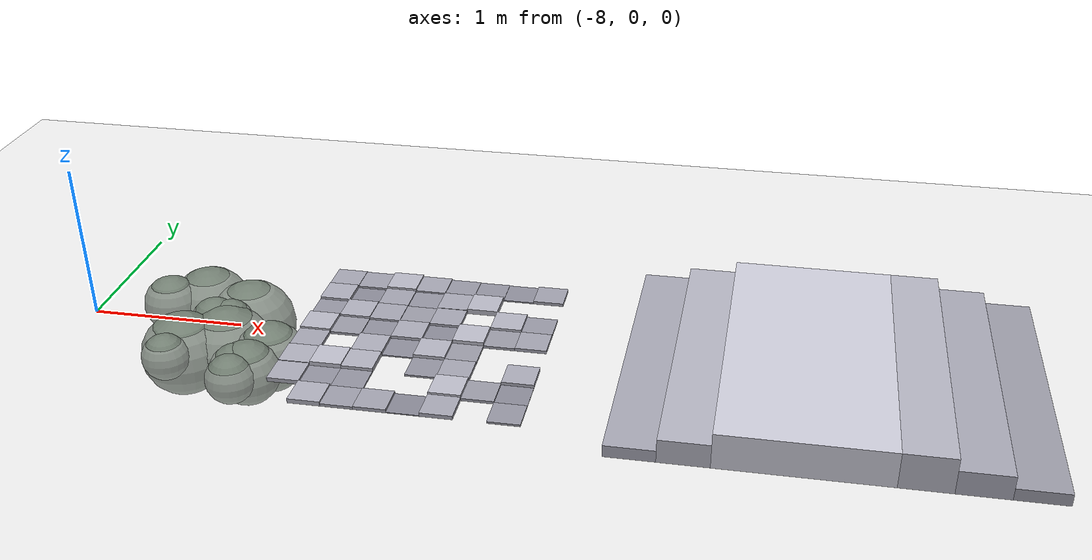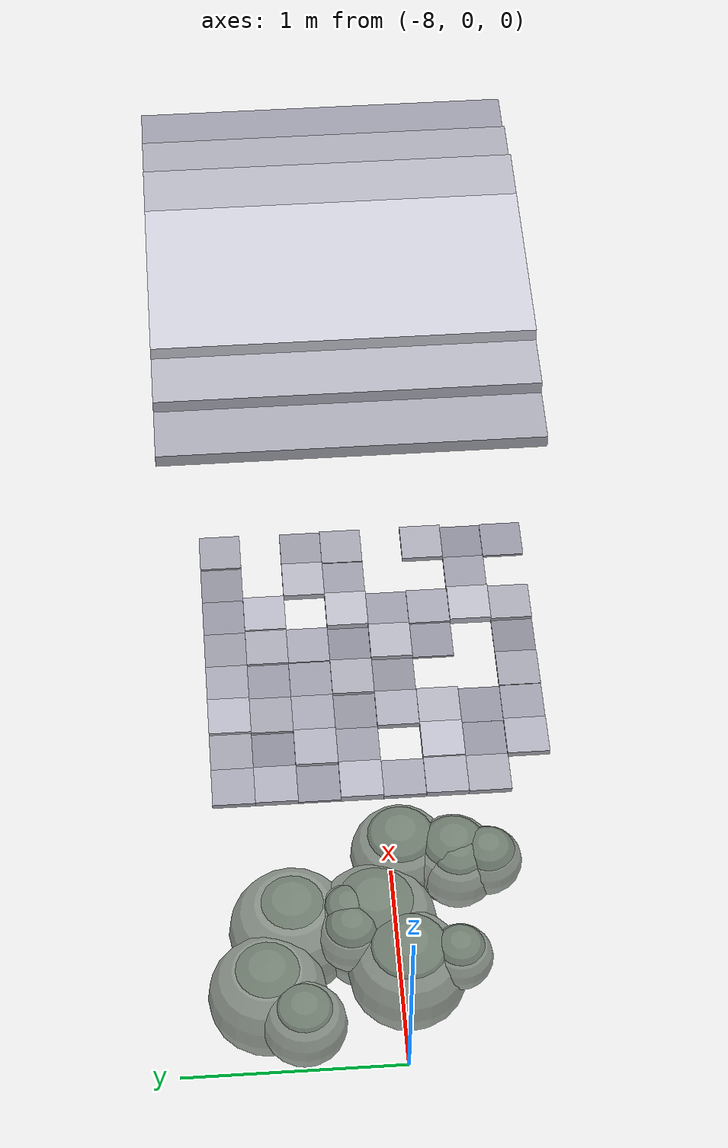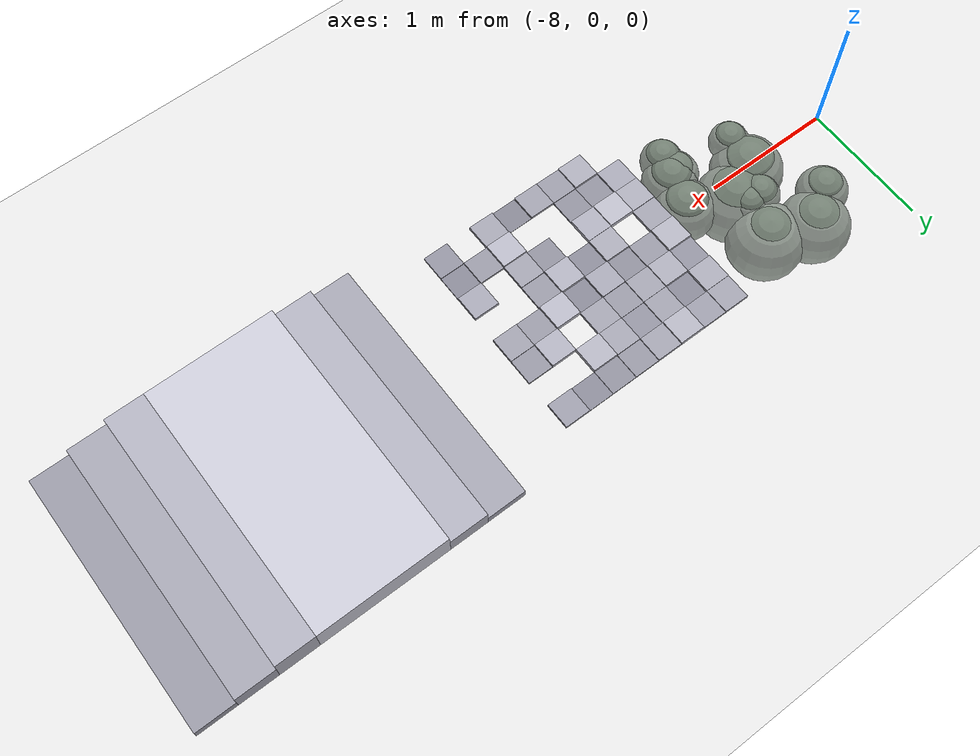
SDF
<?xml version="1.0" ?>
<!-- Generated by scripts/make_course.py (step 7.5 cm, seed 7). The robot walks towards -x. -->
<sdf version="1.5">
  <world name="default">
    <include><uri>model://sun</uri></include>
    <include><uri>model://ground_plane</uri></include>
    <model name="up_1">
      <static>true</static>
      <pose>-2.150 0.000 0.0375 0 0 0</pose>
      <link name="link">
        <collision name="collision"><geometry><box><size>0.300 2.000 0.0750</size></box></geometry></collision>
        <visual name="visual"><geometry><box><size>0.300 2.000 0.0750</size></box></geometry>
          <material><ambient>0.60 0.60 0.65 1</ambient><diffuse>0.60 0.60 0.65 1</diffuse></material></visual>
      </link>
    </model>
    <model name="up_2">
      <static>true</static>
      <pose>-2.450 0.000 0.0750 0 0 0</pose>
      <link name="link">
        <collision name="collision"><geometry><box><size>0.300 2.000 0.1500</size></box></geometry></collision>
        <visual name="visual"><geometry><box><size>0.300 2.000 0.1500</size></box></geometry>
          <material><ambient>0.65 0.65 0.70 1</ambient><diffuse>0.65 0.65 0.70 1</diffuse></material></visual>
      </link>
    </model>
    <model name="up_3">
      <static>true</static>
      <pose>-2.750 0.000 0.1125 0 0 0</pose>
      <link name="link">
        <collision name="collision"><geometry><box><size>0.300 2.000 0.2250</size></box></geometry></collision>
        <visual name="visual"><geometry><box><size>0.300 2.000 0.2250</size></box></geometry>
          <material><ambient>0.70 0.70 0.75 1</ambient><diffuse>0.70 0.70 0.75 1</diffuse></material></visual>
      </link>
    </model>
    <model name="landing">
      <static>true</static>
      <pose>-3.400 0.000 0.1125 0 0 0</pose>
      <link name="link">
        <collision name="collision"><geometry><box><size>1.000 2.000 0.2250</size></box></geometry></collision>
        <visual name="visual"><geometry><box><size>1.000 2.000 0.2250</size></box></geometry>
          <material><ambient>0.80 0.80 0.85 1</ambient><diffuse>0.80 0.80 0.85 1</diffuse></material></visual>
      </link>
    </model>
    <model name="down_1">
      <static>true</static>
      <pose>-4.050 0.000 0.0750 0 0 0</pose>
      <link name="link">
        <collision name="collision"><geometry><box><size>0.300 2.000 0.1500</size></box></geometry></collision>
        <visual name="visual"><geometry><box><size>0.300 2.000 0.1500</size></box></geometry>
          <material><ambient>0.70 0.70 0.75 1</ambient><diffuse>0.70 0.70 0.75 1</diffuse></material></visual>
      </link>
    </model>
    <model name="down_2">
      <static>true</static>
      <pose>-4.350 0.000 0.0375 0 0 0</pose>
      <link name="link">
        <collision name="collision"><geometry><box><size>0.300 2.000 0.0750</size></box></geometry></collision>
        <visual name="visual"><geometry><box><size>0.300 2.000 0.0750</size></box></geometry>
          <material><ambient>0.65 0.65 0.70 1</ambient><diffuse>0.65 0.65 0.70 1</diffuse></material></visual>
      </link>
    </model>
    <model name="tile_0_0">
      <static>true</static>
      <pose>-5.100 -0.700 0.0065 0 0 0</pose>
      <link name="link">
        <collision name="collision"><geometry><box><size>0.200 0.200 0.0130</size></box></geometry></collision>
        <visual name="visual"><geometry><box><size>0.200 0.200 0.0130</size></box></geometry>
          <material><ambient>0.58 0.58 0.63 1</ambient><diffuse>0.58 0.58 0.63 1</diffuse></material></visual>
      </link>
    </model>
    <model name="tile_0_1">
      <static>true</static>
      <pose>-5.100 -0.500 0.0030 0 0 0</pose>
      <link name="link">
        <collision name="collision"><geometry><box><size>0.200 0.200 0.0060</size></box></geometry></collision>
        <visual name="visual"><geometry><box><size>0.200 0.200 0.0060</size></box></geometry>
          <material><ambient>0.54 0.54 0.59 1</ambient><diffuse>0.54 0.54 0.59 1</diffuse></material></visual>
      </link>
    </model>
    <model name="tile_0_2">
      <static>true</static>
      <pose>-5.100 -0.300 0.0130 0 0 0</pose>
      <link name="link">
        <collision name="collision"><geometry><box><size>0.200 0.200 0.0260</size></box></geometry></collision>
        <visual name="visual"><geometry><box><size>0.200 0.200 0.0260</size></box></geometry>
          <material><ambient>0.66 0.66 0.71 1</ambient><diffuse>0.66 0.66 0.71 1</diffuse></material></visual>
      </link>
    </model>
    <model name="tile_0_4">
      <static>true</static>
      <pose>-5.100 0.100 0.0107 0 0 0</pose>
      <link name="link">
        <collision name="collision"><geometry><box><size>0.200 0.200 0.0214</size></box></geometry></collision>
        <visual name="visual"><geometry><box><size>0.200 0.200 0.0214</size></box></geometry>
          <material><ambient>0.63 0.63 0.68 1</ambient><diffuse>0.63 0.63 0.68 1</diffuse></material></visual>
      </link>
    </model>
    <model name="tile_0_5">
      <static>true</static>
      <pose>-5.100 0.300 0.0073 0 0 0</pose>
      <link name="link">
        <collision name="collision"><geometry><box><size>0.200 0.200 0.0146</size></box></geometry></collision>
        <visual name="visual"><geometry><box><size>0.200 0.200 0.0146</size></box></geometry>
          <material><ambient>0.59 0.59 0.64 1</ambient><diffuse>0.59 0.59 0.64 1</diffuse></material></visual>
      </link>
    </model>
    <model name="tile_0_7">
      <static>true</static>
      <pose>-5.100 0.700 0.0101 0 0 0</pose>
      <link name="link">
        <collision name="collision"><geometry><box><size>0.200 0.200 0.0203</size></box></geometry></collision>
        <visual name="visual"><geometry><box><size>0.200 0.200 0.0203</size></box></geometry>
          <material><ambient>0.62 0.62 0.67 1</ambient><diffuse>0.62 0.62 0.67 1</diffuse></material></visual>
      </link>
    </model>
    <model name="tile_1_1">
      <static>true</static>
      <pose>-5.300 -0.500 0.0087 0 0 0</pose>
      <link name="link">
        <collision name="collision"><geometry><box><size>0.200 0.200 0.0173</size></box></geometry></collision>
        <visual name="visual"><geometry><box><size>0.200 0.200 0.0173</size></box></geometry>
          <material><ambient>0.60 0.60 0.65 1</ambient><diffuse>0.60 0.60 0.65 1</diffuse></material></visual>
      </link>
    </model>
    <model name="tile_1_4">
      <static>true</static>
      <pose>-5.300 0.100 0.0085 0 0 0</pose>
      <link name="link">
        <collision name="collision"><geometry><box><size>0.200 0.200 0.0170</size></box></geometry></collision>
        <visual name="visual"><geometry><box><size>0.200 0.200 0.0170</size></box></geometry>
          <material><ambient>0.60 0.60 0.65 1</ambient><diffuse>0.60 0.60 0.65 1</diffuse></material></visual>
      </link>
    </model>
    <model name="tile_1_5">
      <static>true</static>
      <pose>-5.300 0.300 0.0165 0 0 0</pose>
      <link name="link">
        <collision name="collision"><geometry><box><size>0.200 0.200 0.0331</size></box></geometry></collision>
        <visual name="visual"><geometry><box><size>0.200 0.200 0.0331</size></box></geometry>
          <material><ambient>0.70 0.70 0.75 1</ambient><diffuse>0.70 0.70 0.75 1</diffuse></material></visual>
      </link>
    </model>
    <model name="tile_1_7">
      <static>true</static>
      <pose>-5.300 0.700 0.0045 0 0 0</pose>
      <link name="link">
        <collision name="collision"><geometry><box><size>0.200 0.200 0.0089</size></box></geometry></collision>
        <visual name="visual"><geometry><box><size>0.200 0.200 0.0089</size></box></geometry>
          <material><ambient>0.55 0.55 0.60 1</ambient><diffuse>0.55 0.55 0.60 1</diffuse></material></visual>
      </link>
    </model>
    <model name="tile_2_0">
      <static>true</static>
      <pose>-5.500 -0.700 0.0125 0 0 0</pose>
      <link name="link">
        <collision name="collision"><geometry><box><size>0.200 0.200 0.0251</size></box></geometry></collision>
        <visual name="visual"><geometry><box><size>0.200 0.200 0.0251</size></box></geometry>
          <material><ambient>0.65 0.65 0.70 1</ambient><diffuse>0.65 0.65 0.70 1</diffuse></material></visual>
      </link>
    </model>
    <model name="tile_2_1">
      <static>true</static>
      <pose>-5.500 -0.500 0.0190 0 0 0</pose>
      <link name="link">
        <collision name="collision"><geometry><box><size>0.200 0.200 0.0379</size></box></geometry></collision>
        <visual name="visual"><geometry><box><size>0.200 0.200 0.0379</size></box></geometry>
          <material><ambient>0.73 0.73 0.78 1</ambient><diffuse>0.73 0.73 0.78 1</diffuse></material></visual>
      </link>
    </model>
    <model name="tile_2_2">
      <static>true</static>
      <pose>-5.500 -0.300 0.0115 0 0 0</pose>
      <link name="link">
        <collision name="collision"><geometry><box><size>0.200 0.200 0.0231</size></box></geometry></collision>
        <visual name="visual"><geometry><box><size>0.200 0.200 0.0231</size></box></geometry>
          <material><ambient>0.64 0.64 0.69 1</ambient><diffuse>0.64 0.64 0.69 1</diffuse></material></visual>
      </link>
    </model>
    <model name="tile_2_3">
      <static>true</static>
      <pose>-5.500 -0.100 0.0079 0 0 0</pose>
      <link name="link">
        <collision name="collision"><geometry><box><size>0.200 0.200 0.0159</size></box></geometry></collision>
        <visual name="visual"><geometry><box><size>0.200 0.200 0.0159</size></box></geometry>
          <material><ambient>0.60 0.60 0.65 1</ambient><diffuse>0.60 0.60 0.65 1</diffuse></material></visual>
      </link>
    </model>
    <model name="tile_2_4">
      <static>true</static>
      <pose>-5.500 0.100 0.0195 0 0 0</pose>
      <link name="link">
        <collision name="collision"><geometry><box><size>0.200 0.200 0.0391</size></box></geometry></collision>
        <visual name="visual"><geometry><box><size>0.200 0.200 0.0391</size></box></geometry>
          <material><ambient>0.73 0.73 0.78 1</ambient><diffuse>0.73 0.73 0.78 1</diffuse></material></visual>
      </link>
    </model>
    <model name="tile_2_6">
      <static>true</static>
      <pose>-5.500 0.500 0.0172 0 0 0</pose>
      <link name="link">
        <collision name="collision"><geometry><box><size>0.200 0.200 0.0343</size></box></geometry></collision>
        <visual name="visual"><geometry><box><size>0.200 0.200 0.0343</size></box></geometry>
          <material><ambient>0.71 0.71 0.76 1</ambient><diffuse>0.71 0.71 0.76 1</diffuse></material></visual>
      </link>
    </model>
    <model name="tile_2_7">
      <static>true</static>
      <pose>-5.500 0.700 0.0058 0 0 0</pose>
      <link name="link">
        <collision name="collision"><geometry><box><size>0.200 0.200 0.0116</size></box></geometry></collision>
        <visual name="visual"><geometry><box><size>0.200 0.200 0.0116</size></box></geometry>
          <material><ambient>0.57 0.57 0.62 1</ambient><diffuse>0.57 0.57 0.62 1</diffuse></material></visual>
      </link>
    </model>
    <model name="tile_3_0">
      <static>true</static>
      <pose>-5.700 -0.700 0.0029 0 0 0</pose>
      <link name="link">
        <collision name="collision"><geometry><box><size>0.200 0.200 0.0058</size></box></geometry></collision>
        <visual name="visual"><geometry><box><size>0.200 0.200 0.0058</size></box></geometry>
          <material><ambient>0.53 0.53 0.58 1</ambient><diffuse>0.53 0.53 0.58 1</diffuse></material></visual>
      </link>
    </model>
    <model name="tile_3_2">
      <static>true</static>
      <pose>-5.700 -0.300 0.0062 0 0 0</pose>
      <link name="link">
        <collision name="collision"><geometry><box><size>0.200 0.200 0.0123</size></box></geometry></collision>
        <visual name="visual"><geometry><box><size>0.200 0.200 0.0123</size></box></geometry>
          <material><ambient>0.57 0.57 0.62 1</ambient><diffuse>0.57 0.57 0.62 1</diffuse></material></visual>
      </link>
    </model>
    <model name="tile_3_3">
      <static>true</static>
      <pose>-5.700 -0.100 0.0163 0 0 0</pose>
      <link name="link">
        <collision name="collision"><geometry><box><size>0.200 0.200 0.0326</size></box></geometry></collision>
        <visual name="visual"><geometry><box><size>0.200 0.200 0.0326</size></box></geometry>
          <material><ambient>0.70 0.70 0.75 1</ambient><diffuse>0.70 0.70 0.75 1</diffuse></material></visual>
      </link>
    </model>
    <model name="tile_3_4">
      <static>true</static>
      <pose>-5.700 0.100 0.0036 0 0 0</pose>
      <link name="link">
        <collision name="collision"><geometry><box><size>0.200 0.200 0.0072</size></box></geometry></collision>
        <visual name="visual"><geometry><box><size>0.200 0.200 0.0072</size></box></geometry>
          <material><ambient>0.54 0.54 0.59 1</ambient><diffuse>0.54 0.54 0.59 1</diffuse></material></visual>
      </link>
    </model>
    <model name="tile_3_5">
      <static>true</static>
      <pose>-5.700 0.300 0.0116 0 0 0</pose>
      <link name="link">
        <collision name="collision"><geometry><box><size>0.200 0.200 0.0233</size></box></geometry></collision>
        <visual name="visual"><geometry><box><size>0.200 0.200 0.0233</size></box></geometry>
          <material><ambient>0.64 0.64 0.69 1</ambient><diffuse>0.64 0.64 0.69 1</diffuse></material></visual>
      </link>
    </model>
    <model name="tile_3_6">
      <static>true</static>
      <pose>-5.700 0.500 0.0128 0 0 0</pose>
      <link name="link">
        <collision name="collision"><geometry><box><size>0.200 0.200 0.0256</size></box></geometry></collision>
        <visual name="visual"><geometry><box><size>0.200 0.200 0.0256</size></box></geometry>
          <material><ambient>0.65 0.65 0.70 1</ambient><diffuse>0.65 0.65 0.70 1</diffuse></material></visual>
      </link>
    </model>
    <model name="tile_3_7">
      <static>true</static>
      <pose>-5.700 0.700 0.0074 0 0 0</pose>
      <link name="link">
        <collision name="collision"><geometry><box><size>0.200 0.200 0.0149</size></box></geometry></collision>
        <visual name="visual"><geometry><box><size>0.200 0.200 0.0149</size></box></geometry>
          <material><ambient>0.59 0.59 0.64 1</ambient><diffuse>0.59 0.59 0.64 1</diffuse></material></visual>
      </link>
    </model>
    <model name="tile_4_0">
      <static>true</static>
      <pose>-5.900 -0.700 0.0110 0 0 0</pose>
      <link name="link">
        <collision name="collision"><geometry><box><size>0.200 0.200 0.0219</size></box></geometry></collision>
        <visual name="visual"><geometry><box><size>0.200 0.200 0.0219</size></box></geometry>
          <material><ambient>0.63 0.63 0.68 1</ambient><diffuse>0.63 0.63 0.68 1</diffuse></material></visual>
      </link>
    </model>
    <model name="tile_4_3">
      <static>true</static>
      <pose>-5.900 -0.100 0.0041 0 0 0</pose>
      <link name="link">
        <collision name="collision"><geometry><box><size>0.200 0.200 0.0082</size></box></geometry></collision>
        <visual name="visual"><geometry><box><size>0.200 0.200 0.0082</size></box></geometry>
          <material><ambient>0.55 0.55 0.60 1</ambient><diffuse>0.55 0.55 0.60 1</diffuse></material></visual>
      </link>
    </model>
    <model name="tile_4_4">
      <static>true</static>
      <pose>-5.900 0.100 0.0136 0 0 0</pose>
      <link name="link">
        <collision name="collision"><geometry><box><size>0.200 0.200 0.0272</size></box></geometry></collision>
        <visual name="visual"><geometry><box><size>0.200 0.200 0.0272</size></box></geometry>
          <material><ambient>0.66 0.66 0.71 1</ambient><diffuse>0.66 0.66 0.71 1</diffuse></material></visual>
      </link>
    </model>
    <model name="tile_4_5">
      <static>true</static>
      <pose>-5.900 0.300 0.0086 0 0 0</pose>
      <link name="link">
        <collision name="collision"><geometry><box><size>0.200 0.200 0.0171</size></box></geometry></collision>
        <visual name="visual"><geometry><box><size>0.200 0.200 0.0171</size></box></geometry>
          <material><ambient>0.60 0.60 0.65 1</ambient><diffuse>0.60 0.60 0.65 1</diffuse></material></visual>
      </link>
    </model>
    <model name="tile_4_6">
      <static>true</static>
      <pose>-5.900 0.500 0.0063 0 0 0</pose>
      <link name="link">
        <collision name="collision"><geometry><box><size>0.200 0.200 0.0126</size></box></geometry></collision>
        <visual name="visual"><geometry><box><size>0.200 0.200 0.0126</size></box></geometry>
          <material><ambient>0.58 0.58 0.63 1</ambient><diffuse>0.58 0.58 0.63 1</diffuse></material></visual>
      </link>
    </model>
    <model name="tile_4_7">
      <static>true</static>
      <pose>-5.900 0.700 0.0117 0 0 0</pose>
      <link name="link">
        <collision name="collision"><geometry><box><size>0.200 0.200 0.0234</size></box></geometry></collision>
        <visual name="visual"><geometry><box><size>0.200 0.200 0.0234</size></box></geometry>
          <material><ambient>0.64 0.64 0.69 1</ambient><diffuse>0.64 0.64 0.69 1</diffuse></material></visual>
      </link>
    </model>
    <model name="tile_5_0">
      <static>true</static>
      <pose>-6.100 -0.700 0.0091 0 0 0</pose>
      <link name="link">
        <collision name="collision"><geometry><box><size>0.200 0.200 0.0181</size></box></geometry></collision>
        <visual name="visual"><geometry><box><size>0.200 0.200 0.0181</size></box></geometry>
          <material><ambient>0.61 0.61 0.66 1</ambient><diffuse>0.61 0.61 0.66 1</diffuse></material></visual>
      </link>
    </model>
    <model name="tile_5_1">
      <static>true</static>
      <pose>-6.100 -0.500 0.0060 0 0 0</pose>
      <link name="link">
        <collision name="collision"><geometry><box><size>0.200 0.200 0.0120</size></box></geometry></collision>
        <visual name="visual"><geometry><box><size>0.200 0.200 0.0120</size></box></geometry>
          <material><ambient>0.57 0.57 0.62 1</ambient><diffuse>0.57 0.57 0.62 1</diffuse></material></visual>
      </link>
    </model>
    <model name="tile_5_2">
      <static>true</static>
      <pose>-6.100 -0.300 0.0159 0 0 0</pose>
      <link name="link">
        <collision name="collision"><geometry><box><size>0.200 0.200 0.0318</size></box></geometry></collision>
        <visual name="visual"><geometry><box><size>0.200 0.200 0.0318</size></box></geometry>
          <material><ambient>0.69 0.69 0.74 1</ambient><diffuse>0.69 0.69 0.74 1</diffuse></material></visual>
      </link>
    </model>
    <model name="tile_5_3">
      <static>true</static>
      <pose>-6.100 -0.100 0.0140 0 0 0</pose>
      <link name="link">
        <collision name="collision"><geometry><box><size>0.200 0.200 0.0280</size></box></geometry></collision>
        <visual name="visual"><geometry><box><size>0.200 0.200 0.0280</size></box></geometry>
          <material><ambient>0.67 0.67 0.72 1</ambient><diffuse>0.67 0.67 0.72 1</diffuse></material></visual>
      </link>
    </model>
    <model name="tile_5_4">
      <static>true</static>
      <pose>-6.100 0.100 0.0049 0 0 0</pose>
      <link name="link">
        <collision name="collision"><geometry><box><size>0.200 0.200 0.0098</size></box></geometry></collision>
        <visual name="visual"><geometry><box><size>0.200 0.200 0.0098</size></box></geometry>
          <material><ambient>0.56 0.56 0.61 1</ambient><diffuse>0.56 0.56 0.61 1</diffuse></material></visual>
      </link>
    </model>
    <model name="tile_5_5">
      <static>true</static>
      <pose>-6.100 0.300 0.0115 0 0 0</pose>
      <link name="link">
        <collision name="collision"><geometry><box><size>0.200 0.200 0.0230</size></box></geometry></collision>
        <visual name="visual"><geometry><box><size>0.200 0.200 0.0230</size></box></geometry>
          <material><ambient>0.64 0.64 0.69 1</ambient><diffuse>0.64 0.64 0.69 1</diffuse></material></visual>
      </link>
    </model>
    <model name="tile_5_6">
      <static>true</static>
      <pose>-6.100 0.500 0.0105 0 0 0</pose>
      <link name="link">
        <collision name="collision"><geometry><box><size>0.200 0.200 0.0210</size></box></geometry></collision>
        <visual name="visual"><geometry><box><size>0.200 0.200 0.0210</size></box></geometry>
          <material><ambient>0.63 0.63 0.68 1</ambient><diffuse>0.63 0.63 0.68 1</diffuse></material></visual>
      </link>
    </model>
    <model name="tile_5_7">
      <static>true</static>
      <pose>-6.100 0.700 0.0175 0 0 0</pose>
      <link name="link">
        <collision name="collision"><geometry><box><size>0.200 0.200 0.0350</size></box></geometry></collision>
        <visual name="visual"><geometry><box><size>0.200 0.200 0.0350</size></box></geometry>
          <material><ambient>0.71 0.71 0.76 1</ambient><diffuse>0.71 0.71 0.76 1</diffuse></material></visual>
      </link>
    </model>
    <model name="tile_6_0">
      <static>true</static>
      <pose>-6.300 -0.700 0.0146 0 0 0</pose>
      <link name="link">
        <collision name="collision"><geometry><box><size>0.200 0.200 0.0292</size></box></geometry></collision>
        <visual name="visual"><geometry><box><size>0.200 0.200 0.0292</size></box></geometry>
          <material><ambient>0.68 0.68 0.73 1</ambient><diffuse>0.68 0.68 0.73 1</diffuse></material></visual>
      </link>
    </model>
    <model name="tile_6_1">
      <static>true</static>
      <pose>-6.300 -0.500 0.0058 0 0 0</pose>
      <link name="link">
        <collision name="collision"><geometry><box><size>0.200 0.200 0.0115</size></box></geometry></collision>
        <visual name="visual"><geometry><box><size>0.200 0.200 0.0115</size></box></geometry>
          <material><ambient>0.57 0.57 0.62 1</ambient><diffuse>0.57 0.57 0.62 1</diffuse></material></visual>
      </link>
    </model>
    <model name="tile_6_2">
      <static>true</static>
      <pose>-6.300 -0.300 0.0196 0 0 0</pose>
      <link name="link">
        <collision name="collision"><geometry><box><size>0.200 0.200 0.0392</size></box></geometry></collision>
        <visual name="visual"><geometry><box><size>0.200 0.200 0.0392</size></box></geometry>
          <material><ambient>0.74 0.74 0.79 1</ambient><diffuse>0.74 0.74 0.79 1</diffuse></material></visual>
      </link>
    </model>
    <model name="tile_6_4">
      <static>true</static>
      <pose>-6.300 0.100 0.0084 0 0 0</pose>
      <link name="link">
        <collision name="collision"><geometry><box><size>0.200 0.200 0.0167</size></box></geometry></collision>
        <visual name="visual"><geometry><box><size>0.200 0.200 0.0167</size></box></geometry>
          <material><ambient>0.60 0.60 0.65 1</ambient><diffuse>0.60 0.60 0.65 1</diffuse></material></visual>
      </link>
    </model>
    <model name="tile_6_5">
      <static>true</static>
      <pose>-6.300 0.300 0.0151 0 0 0</pose>
      <link name="link">
        <collision name="collision"><geometry><box><size>0.200 0.200 0.0303</size></box></geometry></collision>
        <visual name="visual"><geometry><box><size>0.200 0.200 0.0303</size></box></geometry>
          <material><ambient>0.68 0.68 0.73 1</ambient><diffuse>0.68 0.68 0.73 1</diffuse></material></visual>
      </link>
    </model>
    <model name="tile_6_6">
      <static>true</static>
      <pose>-6.300 0.500 0.0030 0 0 0</pose>
      <link name="link">
        <collision name="collision"><geometry><box><size>0.200 0.200 0.0061</size></box></geometry></collision>
        <visual name="visual"><geometry><box><size>0.200 0.200 0.0061</size></box></geometry>
          <material><ambient>0.54 0.54 0.59 1</ambient><diffuse>0.54 0.54 0.59 1</diffuse></material></visual>
      </link>
    </model>
    <model name="tile_6_7">
      <static>true</static>
      <pose>-6.300 0.700 0.0098 0 0 0</pose>
      <link name="link">
        <collision name="collision"><geometry><box><size>0.200 0.200 0.0196</size></box></geometry></collision>
        <visual name="visual"><geometry><box><size>0.200 0.200 0.0196</size></box></geometry>
          <material><ambient>0.62 0.62 0.67 1</ambient><diffuse>0.62 0.62 0.67 1</diffuse></material></visual>
      </link>
    </model>
    <model name="tile_7_1">
      <static>true</static>
      <pose>-6.500 -0.500 0.0134 0 0 0</pose>
      <link name="link">
        <collision name="collision"><geometry><box><size>0.200 0.200 0.0267</size></box></geometry></collision>
        <visual name="visual"><geometry><box><size>0.200 0.200 0.0267</size></box></geometry>
          <material><ambient>0.66 0.66 0.71 1</ambient><diffuse>0.66 0.66 0.71 1</diffuse></material></visual>
      </link>
    </model>
    <model name="tile_7_2">
      <static>true</static>
      <pose>-6.500 -0.300 0.0153 0 0 0</pose>
      <link name="link">
        <collision name="collision"><geometry><box><size>0.200 0.200 0.0306</size></box></geometry></collision>
        <visual name="visual"><geometry><box><size>0.200 0.200 0.0306</size></box></geometry>
          <material><ambient>0.68 0.68 0.73 1</ambient><diffuse>0.68 0.68 0.73 1</diffuse></material></visual>
      </link>
    </model>
    <model name="tile_7_3">
      <static>true</static>
      <pose>-6.500 -0.100 0.0115 0 0 0</pose>
      <link name="link">
        <collision name="collision"><geometry><box><size>0.200 0.200 0.0229</size></box></geometry></collision>
        <visual name="visual"><geometry><box><size>0.200 0.200 0.0229</size></box></geometry>
          <material><ambient>0.64 0.64 0.69 1</ambient><diffuse>0.64 0.64 0.69 1</diffuse></material></visual>
      </link>
    </model>
    <model name="tile_7_4">
      <static>true</static>
      <pose>-6.500 0.100 0.0175 0 0 0</pose>
      <link name="link">
        <collision name="collision"><geometry><box><size>0.200 0.200 0.0350</size></box></geometry></collision>
        <visual name="visual"><geometry><box><size>0.200 0.200 0.0350</size></box></geometry>
          <material><ambient>0.71 0.71 0.76 1</ambient><diffuse>0.71 0.71 0.76 1</diffuse></material></visual>
      </link>
    </model>
    <model name="tile_7_5">
      <static>true</static>
      <pose>-6.500 0.300 0.0063 0 0 0</pose>
      <link name="link">
        <collision name="collision"><geometry><box><size>0.200 0.200 0.0125</size></box></geometry></collision>
        <visual name="visual"><geometry><box><size>0.200 0.200 0.0125</size></box></geometry>
          <material><ambient>0.58 0.58 0.63 1</ambient><diffuse>0.58 0.58 0.63 1</diffuse></material></visual>
      </link>
    </model>
    <model name="tile_7_6">
      <static>true</static>
      <pose>-6.500 0.500 0.0139 0 0 0</pose>
      <link name="link">
        <collision name="collision"><geometry><box><size>0.200 0.200 0.0278</size></box></geometry></collision>
        <visual name="visual"><geometry><box><size>0.200 0.200 0.0278</size></box></geometry>
          <material><ambient>0.67 0.67 0.72 1</ambient><diffuse>0.67 0.67 0.72 1</diffuse></material></visual>
      </link>
    </model>
    <model name="tile_7_7">
      <static>true</static>
      <pose>-6.500 0.700 0.0119 0 0 0</pose>
      <link name="link">
        <collision name="collision"><geometry><box><size>0.200 0.200 0.0238</size></box></geometry></collision>
        <visual name="visual"><geometry><box><size>0.200 0.200 0.0238</size></box></geometry>
          <material><ambient>0.64 0.64 0.69 1</ambient><diffuse>0.64 0.64 0.69 1</diffuse></material></visual>
      </link>
    </model>
    <model name="bump_0">
      <static>true</static>
      <pose>-7.396 -0.053 -0.2177 0 0 0</pose>
      <link name="link">
        <collision name="collision"><geometry><sphere><radius>0.276</radius></sphere></geometry></collision>
        <visual name="visual"><geometry><sphere><radius>0.276</radius></sphere></geometry>
          <material><ambient>0.45 0.5 0.45 1</ambient><diffuse>0.45 0.5 0.45 1</diffuse></material></visual>
      </link>
    </model>
    <model name="bump_1">
      <static>true</static>
      <pose>-7.269 0.197 -0.1081 0 0 0</pose>
      <link name="link">
        <collision name="collision"><geometry><sphere><radius>0.159</radius></sphere></geometry></collision>
        <visual name="visual"><geometry><sphere><radius>0.159</radius></sphere></geometry>
          <material><ambient>0.45 0.5 0.45 1</ambient><diffuse>0.45 0.5 0.45 1</diffuse></material></visual>
      </link>
    </model>
    <model name="bump_2">
      <static>true</static>
      <pose>-7.477 0.592 -0.2348 0 0 0</pose>
      <link name="link">
        <collision name="collision"><geometry><sphere><radius>0.273</radius></sphere></geometry></collision>
        <visual name="visual"><geometry><sphere><radius>0.273</radius></sphere></geometry>
          <material><ambient>0.45 0.5 0.45 1</ambient><diffuse>0.45 0.5 0.45 1</diffuse></material></visual>
      </link>
    </model>
    <model name="bump_3">
      <static>true</static>
      <pose>-7.163 0.202 -0.1095 0 0 0</pose>
      <link name="link">
        <collision name="collision"><geometry><sphere><radius>0.153</radius></sphere></geometry></collision>
        <visual name="visual"><geometry><sphere><radius>0.153</radius></sphere></geometry>
          <material><ambient>0.45 0.5 0.45 1</ambient><diffuse>0.45 0.5 0.45 1</diffuse></material></visual>
      </link>
    </model>
    <model name="bump_4">
      <static>true</static>
      <pose>-6.902 -0.459 -0.1058 0 0 0</pose>
      <link name="link">
        <collision name="collision"><geometry><sphere><radius>0.159</radius></sphere></geometry></collision>
        <visual name="visual"><geometry><sphere><radius>0.159</radius></sphere></geometry>
          <material><ambient>0.45 0.5 0.45 1</ambient><diffuse>0.45 0.5 0.45 1</diffuse></material></visual>
      </link>
    </model>
    <model name="bump_5">
      <static>true</static>
      <pose>-6.855 -0.303 -0.1525 0 0 0</pose>
      <link name="link">
        <collision name="collision"><geometry><sphere><radius>0.209</radius></sphere></geometry></collision>
        <visual name="visual"><geometry><sphere><radius>0.209</radius></sphere></geometry>
          <material><ambient>0.45 0.5 0.45 1</ambient><diffuse>0.45 0.5 0.45 1</diffuse></material></visual>
      </link>
    </model>
    <model name="bump_6">
      <static>true</static>
      <pose>-6.797 -0.061 -0.1759 0 0 0</pose>
      <link name="link">
        <collision name="collision"><geometry><sphere><radius>0.232</radius></sphere></geometry></collision>
        <visual name="visual"><geometry><sphere><radius>0.232</radius></sphere></geometry>
          <material><ambient>0.45 0.5 0.45 1</ambient><diffuse>0.45 0.5 0.45 1</diffuse></material></visual>
      </link>
    </model>
    <model name="bump_7">
      <static>true</static>
      <pose>-7.683 0.437 -0.1493 0 0 0</pose>
      <link name="link">
        <collision name="collision"><geometry><sphere><radius>0.192</radius></sphere></geometry></collision>
        <visual name="visual"><geometry><sphere><radius>0.192</radius></sphere></geometry>
          <material><ambient>0.45 0.5 0.45 1</ambient><diffuse>0.45 0.5 0.45 1</diffuse></material></visual>
      </link>
    </model>
    <model name="bump_8">
      <static>true</static>
      <pose>-7.131 0.461 -0.2591 0 0 0</pose>
      <link name="link">
        <collision name="collision"><geometry><sphere><radius>0.294</radius></sphere></geometry></collision>
        <visual name="visual"><geometry><sphere><radius>0.294</radius></sphere></geometry>
          <material><ambient>0.45 0.5 0.45 1</ambient><diffuse>0.45 0.5 0.45 1</diffuse></material></visual>
      </link>
    </model>
    <model name="bump_9">
      <static>true</static>
      <pose>-6.911 -0.322 -0.1405 0 0 0</pose>
      <link name="link">
        <collision name="collision"><geometry><sphere><radius>0.185</radius></sphere></geometry></collision>
        <visual name="visual"><geometry><sphere><radius>0.185</radius></sphere></geometry>
          <material><ambient>0.45 0.5 0.45 1</ambient><diffuse>0.45 0.5 0.45 1</diffuse></material></visual>
      </link>
    </model>
    <model name="bump_10">
      <static>true</static>
      <pose>-7.407 -0.285 -0.1080 0 0 0</pose>
      <link name="link">
        <collision name="collision"><geometry><sphere><radius>0.151</radius></sphere></geometry></collision>
        <visual name="visual"><geometry><sphere><radius>0.151</radius></sphere></geometry>
          <material><ambient>0.45 0.5 0.45 1</ambient><diffuse>0.45 0.5 0.45 1</diffuse></material></visual>
      </link>
    </model>
    <model name="bump_11">
      <static>true</static>
      <pose>-7.143 0.080 -0.2422 0 0 0</pose>
      <link name="link">
        <collision name="collision"><geometry><sphere><radius>0.293</radius></sphere></geometry></collision>
        <visual name="visual"><geometry><sphere><radius>0.293</radius></sphere></geometry>
          <material><ambient>0.45 0.5 0.45 1</ambient><diffuse>0.45 0.5 0.45 1</diffuse></material></visual>
      </link>
    </model>
  </world>
</sdf>
